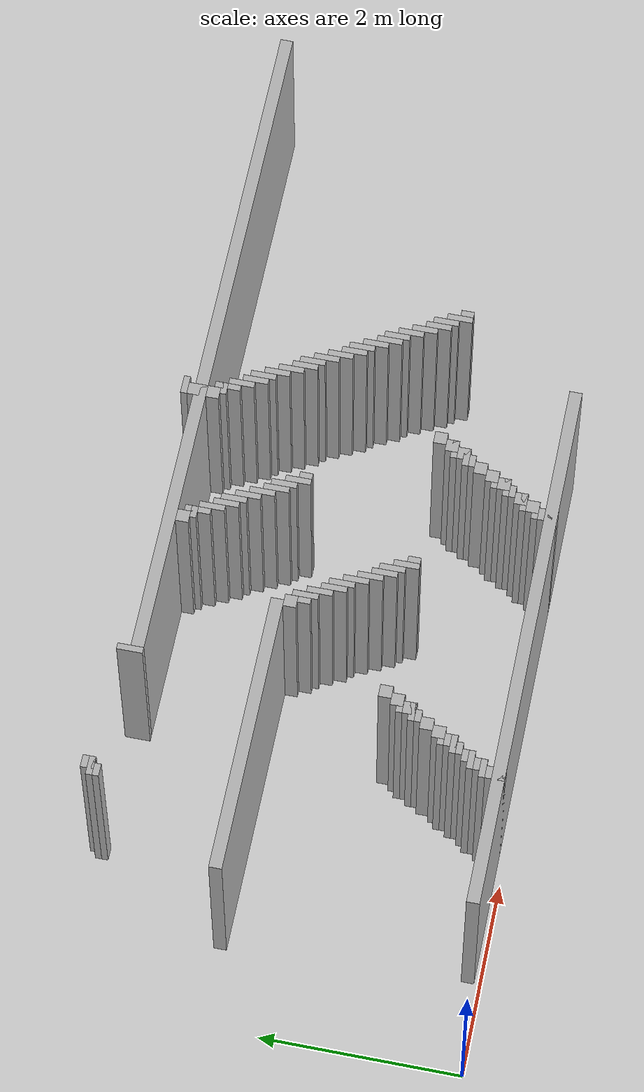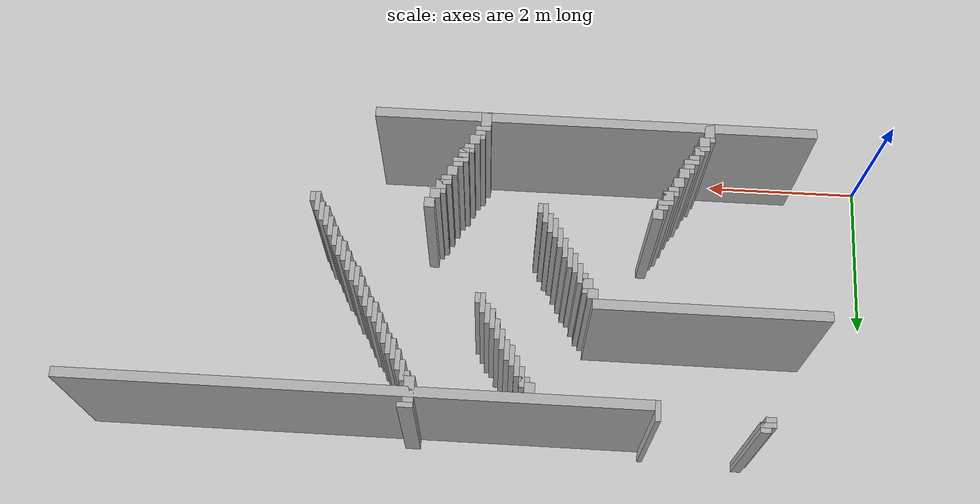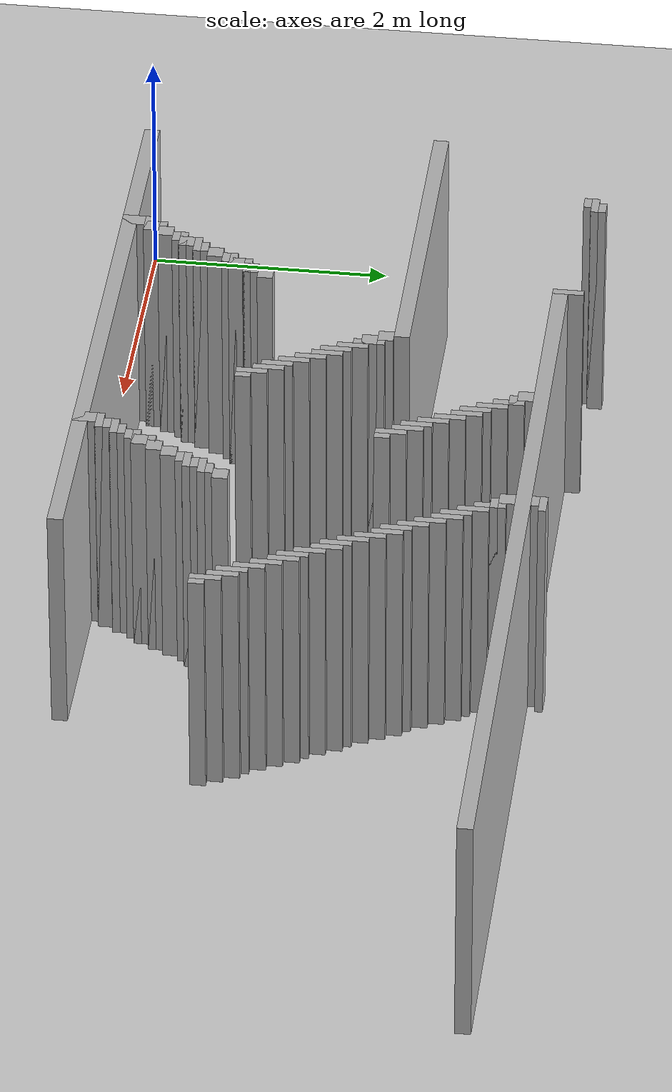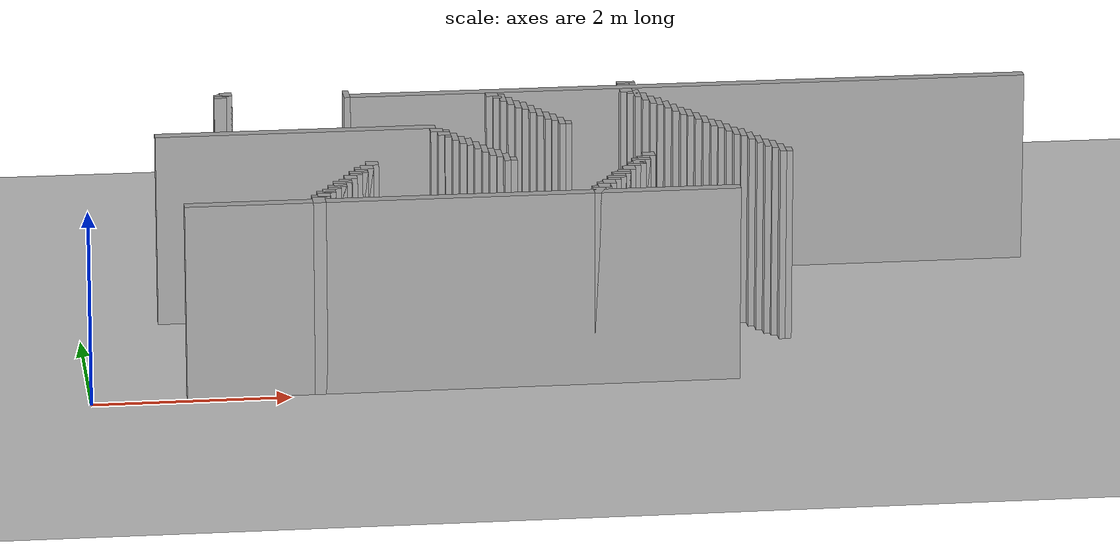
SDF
<sdf version="1.6">
 <world name="slam_world">
  <model name="ground_plane">
   <static>true</static>
   <link name="link">
    <collision name="collision">
     <geometry><plane><normal>0 0 1</normal><size>100 100</size></plane></geometry>
    </collision>
    <visual name="visual">
     <geometry><plane><normal>0 0 1</normal><size>100 100</size></plane></geometry>
     <material>
      <ambient>0.8 0.8 0.8 1</ambient>
      <diffuse>0.8 0.8 0.8 1</diffuse>
      <specular>0.8 0.8 0.8 1</specular>
     </material>
    </visual>
   </link>
  </model>
  <model name="wall_1937">
   <static>true</static>
   <pose>1.6595744680851063 3.957446808510638 1.0 0 0 0</pose>
   <link name="link">
    <collision name="collision">
     <geometry><box><size>0.1276595744680851 0.1276595744680851 2.0</size></box></geometry>
    </collision>
    <visual name="visual">
     <geometry><box><size>0.1276595744680851 0.1276595744680851 2.0</size></box></geometry>
     <material><ambient>0.5 0.5 0.5 1</ambient><diffuse>0.7 0.7 0.7 1</diffuse></material>
    </visual>
   </link>
  </model>
  <model name="wall_1942">
   <static>true</static>
   <pose>1.627659574468085 3.9255319148936167 1.0 0 0 0</pose>
   <link name="link">
    <collision name="collision">
     <geometry><box><size>0.19148936170212766 0.06382978723404255 2.0</size></box></geometry>
    </collision>
    <visual name="visual">
     <geometry><box><size>0.19148936170212766 0.06382978723404255 2.0</size></box></geometry>
     <material><ambient>0.5 0.5 0.5 1</ambient><diffuse>0.7 0.7 0.7 1</diffuse></material>
    </visual>
   </link>
  </model>
  <model name="wall_1943">
   <static>true</static>
   <pose>2.9042553191489358 3.829787234042553 1.0 0 0 0</pose>
   <link name="link">
    <collision name="collision">
     <geometry><box><size>0.06382978723404255 0.2553191489361702 2.0</size></box></geometry>
    </collision>
    <visual name="visual">
     <geometry><box><size>0.06382978723404255 0.2553191489361702 2.0</size></box></geometry>
     <material><ambient>0.5 0.5 0.5 1</ambient><diffuse>0.7 0.7 0.7 1</diffuse></material>
    </visual>
   </link>
  </model>
  <model name="wall_1944">
   <static>true</static>
   <pose>5.840425531914893 3.9255319148936167 1.0 0 0 0</pose>
   <link name="link">
    <collision name="collision">
     <geometry><box><size>0.19148936170212766 0.06382978723404255 2.0</size></box></geometry>
    </collision>
    <visual name="visual">
     <geometry><box><size>0.19148936170212766 0.06382978723404255 2.0</size></box></geometry>
     <material><ambient>0.5 0.5 0.5 1</ambient><diffuse>0.7 0.7 0.7 1</diffuse></material>
    </visual>
   </link>
  </model>
  <model name="wall_1948">
   <static>true</static>
   <pose>1.5957446808510638 3.861702127659574 1.0 0 0 0</pose>
   <link name="link">
    <collision name="collision">
     <geometry><box><size>0.1276595744680851 0.06382978723404255 2.0</size></box></geometry>
    </collision>
    <visual name="visual">
     <geometry><box><size>0.1276595744680851 0.06382978723404255 2.0</size></box></geometry>
     <material><ambient>0.5 0.5 0.5 1</ambient><diffuse>0.7 0.7 0.7 1</diffuse></material>
    </visual>
   </link>
  </model>
  <model name="wall_1949">
   <static>true</static>
   <pose>5.8085106382978715 3.734042553191489 1.0 0 0 0</pose>
   <link name="link">
    <collision name="collision">
     <geometry><box><size>0.1276595744680851 0.3191489361702127 2.0</size></box></geometry>
    </collision>
    <visual name="visual">
     <geometry><box><size>0.1276595744680851 0.3191489361702127 2.0</size></box></geometry>
     <material><ambient>0.5 0.5 0.5 1</ambient><diffuse>0.7 0.7 0.7 1</diffuse></material>
    </visual>
   </link>
  </model>
  <model name="wall_1954">
   <static>true</static>
   <pose>6.478723404255319 3.7659574468085104 1.0 0 0 0</pose>
   <link name="link">
    <collision name="collision">
     <geometry><box><size>7.085106382978723 0.1276595744680851 2.0</size></box></geometry>
    </collision>
    <visual name="visual">
     <geometry><box><size>7.085106382978723 0.1276595744680851 2.0</size></box></geometry>
     <material><ambient>0.5 0.5 0.5 1</ambient><diffuse>0.7 0.7 0.7 1</diffuse></material>
    </visual>
   </link>
  </model>
  <model name="wall_1963">
   <static>true</static>
   <pose>4.404255319148936 3.6382978723404253 1.0 0 0 0</pose>
   <link name="link">
    <collision name="collision">
     <geometry><box><size>0.1276595744680851 0.1276595744680851 2.0</size></box></geometry>
    </collision>
    <visual name="visual">
     <geometry><box><size>0.1276595744680851 0.1276595744680851 2.0</size></box></geometry>
     <material><ambient>0.5 0.5 0.5 1</ambient><diffuse>0.7 0.7 0.7 1</diffuse></material>
    </visual>
   </link>
  </model>
  <model name="wall_1969">
   <static>true</static>
   <pose>4.5 3.5106382978723403 1.0 0 0 0</pose>
   <link name="link">
    <collision name="collision">
     <geometry><box><size>0.06382978723404255 0.2553191489361702 2.0</size></box></geometry>
    </collision>
    <visual name="visual">
     <geometry><box><size>0.06382978723404255 0.2553191489361702 2.0</size></box></geometry>
     <material><ambient>0.5 0.5 0.5 1</ambient><diffuse>0.7 0.7 0.7 1</diffuse></material>
    </visual>
   </link>
  </model>
  <model name="wall_1970">
   <static>true</static>
   <pose>5.904255319148936 3.5106382978723403 1.0 0 0 0</pose>
   <link name="link">
    <collision name="collision">
     <geometry><box><size>0.06382978723404255 0.2553191489361702 2.0</size></box></geometry>
    </collision>
    <visual name="visual">
     <geometry><box><size>0.06382978723404255 0.2553191489361702 2.0</size></box></geometry>
     <material><ambient>0.5 0.5 0.5 1</ambient><diffuse>0.7 0.7 0.7 1</diffuse></material>
    </visual>
   </link>
  </model>
  <model name="wall_1975">
   <static>true</static>
   <pose>4.468085106382978 3.5425531914893615 1.0 0 0 0</pose>
   <link name="link">
    <collision name="collision">
     <geometry><box><size>0.1276595744680851 0.06382978723404255 2.0</size></box></geometry>
    </collision>
    <visual name="visual">
     <geometry><box><size>0.1276595744680851 0.06382978723404255 2.0</size></box></geometry>
     <material><ambient>0.5 0.5 0.5 1</ambient><diffuse>0.7 0.7 0.7 1</diffuse></material>
    </visual>
   </link>
  </model>
  <model name="wall_1976">
   <static>true</static>
   <pose>5.872340425531914 3.5425531914893615 1.0 0 0 0</pose>
   <link name="link">
    <collision name="collision">
     <geometry><box><size>0.1276595744680851 0.06382978723404255 2.0</size></box></geometry>
    </collision>
    <visual name="visual">
     <geometry><box><size>0.1276595744680851 0.06382978723404255 2.0</size></box></geometry>
     <material><ambient>0.5 0.5 0.5 1</ambient><diffuse>0.7 0.7 0.7 1</diffuse></material>
    </visual>
   </link>
  </model>
  <model name="wall_1980">
   <static>true</static>
   <pose>4.5638297872340425 3.382978723404255 1.0 0 0 0</pose>
   <link name="link">
    <collision name="collision">
     <geometry><box><size>0.06382978723404255 0.2553191489361702 2.0</size></box></geometry>
    </collision>
    <visual name="visual">
     <geometry><box><size>0.06382978723404255 0.2553191489361702 2.0</size></box></geometry>
     <material><ambient>0.5 0.5 0.5 1</ambient><diffuse>0.7 0.7 0.7 1</diffuse></material>
    </visual>
   </link>
  </model>
  <model name="wall_1981">
   <static>true</static>
   <pose>5.968085106382978 3.382978723404255 1.0 0 0 0</pose>
   <link name="link">
    <collision name="collision">
     <geometry><box><size>0.06382978723404255 0.2553191489361702 2.0</size></box></geometry>
    </collision>
    <visual name="visual">
     <geometry><box><size>0.06382978723404255 0.2553191489361702 2.0</size></box></geometry>
     <material><ambient>0.5 0.5 0.5 1</ambient><diffuse>0.7 0.7 0.7 1</diffuse></material>
    </visual>
   </link>
  </model>
  <model name="wall_1987">
   <static>true</static>
   <pose>4.627659574468085 3.25531914893617 1.0 0 0 0</pose>
   <link name="link">
    <collision name="collision">
     <geometry><box><size>0.06382978723404255 0.2553191489361702 2.0</size></box></geometry>
    </collision>
    <visual name="visual">
     <geometry><box><size>0.06382978723404255 0.2553191489361702 2.0</size></box></geometry>
     <material><ambient>0.5 0.5 0.5 1</ambient><diffuse>0.7 0.7 0.7 1</diffuse></material>
    </visual>
   </link>
  </model>
  <model name="wall_1988">
   <static>true</static>
   <pose>6.031914893617021 3.25531914893617 1.0 0 0 0</pose>
   <link name="link">
    <collision name="collision">
     <geometry><box><size>0.06382978723404255 0.2553191489361702 2.0</size></box></geometry>
    </collision>
    <visual name="visual">
     <geometry><box><size>0.06382978723404255 0.2553191489361702 2.0</size></box></geometry>
     <material><ambient>0.5 0.5 0.5 1</ambient><diffuse>0.7 0.7 0.7 1</diffuse></material>
    </visual>
   </link>
  </model>
  <model name="wall_1994">
   <static>true</static>
   <pose>4.691489361702128 3.1914893617021276 1.0 0 0 0</pose>
   <link name="link">
    <collision name="collision">
     <geometry><box><size>0.06382978723404255 0.2553191489361702 2.0</size></box></geometry>
    </collision>
    <visual name="visual">
     <geometry><box><size>0.06382978723404255 0.2553191489361702 2.0</size></box></geometry>
     <material><ambient>0.5 0.5 0.5 1</ambient><diffuse>0.7 0.7 0.7 1</diffuse></material>
    </visual>
   </link>
  </model>
  <model name="wall_1995">
   <static>true</static>
   <pose>6.095744680851063 3.1914893617021276 1.0 0 0 0</pose>
   <link name="link">
    <collision name="collision">
     <geometry><box><size>0.06382978723404255 0.2553191489361702 2.0</size></box></geometry>
    </collision>
    <visual name="visual">
     <geometry><box><size>0.06382978723404255 0.2553191489361702 2.0</size></box></geometry>
     <material><ambient>0.5 0.5 0.5 1</ambient><diffuse>0.7 0.7 0.7 1</diffuse></material>
    </visual>
   </link>
  </model>
  <model name="wall_2002">
   <static>true</static>
   <pose>4.75531914893617 3.0638297872340425 1.0 0 0 0</pose>
   <link name="link">
    <collision name="collision">
     <geometry><box><size>0.06382978723404255 0.2553191489361702 2.0</size></box></geometry>
    </collision>
    <visual name="visual">
     <geometry><box><size>0.06382978723404255 0.2553191489361702 2.0</size></box></geometry>
     <material><ambient>0.5 0.5 0.5 1</ambient><diffuse>0.7 0.7 0.7 1</diffuse></material>
    </visual>
   </link>
  </model>
  <model name="wall_2003">
   <static>true</static>
   <pose>6.159574468085106 3.0638297872340425 1.0 0 0 0</pose>
   <link name="link">
    <collision name="collision">
     <geometry><box><size>0.06382978723404255 0.2553191489361702 2.0</size></box></geometry>
    </collision>
    <visual name="visual">
     <geometry><box><size>0.06382978723404255 0.2553191489361702 2.0</size></box></geometry>
     <material><ambient>0.5 0.5 0.5 1</ambient><diffuse>0.7 0.7 0.7 1</diffuse></material>
    </visual>
   </link>
  </model>
  <model name="wall_2010">
   <static>true</static>
   <pose>4.819148936170213 2.936170212765957 1.0 0 0 0</pose>
   <link name="link">
    <collision name="collision">
     <geometry><box><size>0.06382978723404255 0.2553191489361702 2.0</size></box></geometry>
    </collision>
    <visual name="visual">
     <geometry><box><size>0.06382978723404255 0.2553191489361702 2.0</size></box></geometry>
     <material><ambient>0.5 0.5 0.5 1</ambient><diffuse>0.7 0.7 0.7 1</diffuse></material>
    </visual>
   </link>
  </model>
  <model name="wall_2011">
   <static>true</static>
   <pose>6.223404255319148 2.936170212765957 1.0 0 0 0</pose>
   <link name="link">
    <collision name="collision">
     <geometry><box><size>0.06382978723404255 0.2553191489361702 2.0</size></box></geometry>
    </collision>
    <visual name="visual">
     <geometry><box><size>0.06382978723404255 0.2553191489361702 2.0</size></box></geometry>
     <material><ambient>0.5 0.5 0.5 1</ambient><diffuse>0.7 0.7 0.7 1</diffuse></material>
    </visual>
   </link>
  </model>
  <model name="wall_2017">
   <static>true</static>
   <pose>4.882978723404255 2.808510638297872 1.0 0 0 0</pose>
   <link name="link">
    <collision name="collision">
     <geometry><box><size>0.06382978723404255 0.2553191489361702 2.0</size></box></geometry>
    </collision>
    <visual name="visual">
     <geometry><box><size>0.06382978723404255 0.2553191489361702 2.0</size></box></geometry>
     <material><ambient>0.5 0.5 0.5 1</ambient><diffuse>0.7 0.7 0.7 1</diffuse></material>
    </visual>
   </link>
  </model>
  <model name="wall_2018">
   <static>true</static>
   <pose>6.287234042553191 2.808510638297872 1.0 0 0 0</pose>
   <link name="link">
    <collision name="collision">
     <geometry><box><size>0.06382978723404255 0.2553191489361702 2.0</size></box></geometry>
    </collision>
    <visual name="visual">
     <geometry><box><size>0.06382978723404255 0.2553191489361702 2.0</size></box></geometry>
     <material><ambient>0.5 0.5 0.5 1</ambient><diffuse>0.7 0.7 0.7 1</diffuse></material>
    </visual>
   </link>
  </model>
  <model name="wall_2024">
   <static>true</static>
   <pose>4.946808510638298 2.7446808510638294 1.0 0 0 0</pose>
   <link name="link">
    <collision name="collision">
     <geometry><box><size>0.06382978723404255 0.2553191489361702 2.0</size></box></geometry>
    </collision>
    <visual name="visual">
     <geometry><box><size>0.06382978723404255 0.2553191489361702 2.0</size></box></geometry>
     <material><ambient>0.5 0.5 0.5 1</ambient><diffuse>0.7 0.7 0.7 1</diffuse></material>
    </visual>
   </link>
  </model>
  <model name="wall_2025">
   <static>true</static>
   <pose>6.3510638297872335 2.7446808510638294 1.0 0 0 0</pose>
   <link name="link">
    <collision name="collision">
     <geometry><box><size>0.06382978723404255 0.2553191489361702 2.0</size></box></geometry>
    </collision>
    <visual name="visual">
     <geometry><box><size>0.06382978723404255 0.2553191489361702 2.0</size></box></geometry>
     <material><ambient>0.5 0.5 0.5 1</ambient><diffuse>0.7 0.7 0.7 1</diffuse></material>
    </visual>
   </link>
  </model>
  <model name="wall_2032">
   <static>true</static>
   <pose>5.01063829787234 2.6170212765957444 1.0 0 0 0</pose>
   <link name="link">
    <collision name="collision">
     <geometry><box><size>0.06382978723404255 0.2553191489361702 2.0</size></box></geometry>
    </collision>
    <visual name="visual">
     <geometry><box><size>0.06382978723404255 0.2553191489361702 2.0</size></box></geometry>
     <material><ambient>0.5 0.5 0.5 1</ambient><diffuse>0.7 0.7 0.7 1</diffuse></material>
    </visual>
   </link>
  </model>
  <model name="wall_2033">
   <static>true</static>
   <pose>6.414893617021276 2.6170212765957444 1.0 0 0 0</pose>
   <link name="link">
    <collision name="collision">
     <geometry><box><size>0.06382978723404255 0.2553191489361702 2.0</size></box></geometry>
    </collision>
    <visual name="visual">
     <geometry><box><size>0.06382978723404255 0.2553191489361702 2.0</size></box></geometry>
     <material><ambient>0.5 0.5 0.5 1</ambient><diffuse>0.7 0.7 0.7 1</diffuse></material>
    </visual>
   </link>
  </model>
  <model name="wall_2039">
   <static>true</static>
   <pose>2.2659574468085104 2.553191489361702 1.0 0 0 0</pose>
   <link name="link">
    <collision name="collision">
     <geometry><box><size>2.8723404255319145 0.1276595744680851 2.0</size></box></geometry>
    </collision>
    <visual name="visual">
     <geometry><box><size>2.8723404255319145 0.1276595744680851 2.0</size></box></geometry>
     <material><ambient>0.5 0.5 0.5 1</ambient><diffuse>0.7 0.7 0.7 1</diffuse></material>
    </visual>
   </link>
  </model>
  <model name="wall_2040">
   <static>true</static>
   <pose>5.074468085106383 2.553191489361702 1.0 0 0 0</pose>
   <link name="link">
    <collision name="collision">
     <geometry><box><size>0.06382978723404255 0.1276595744680851 2.0</size></box></geometry>
    </collision>
    <visual name="visual">
     <geometry><box><size>0.06382978723404255 0.1276595744680851 2.0</size></box></geometry>
     <material><ambient>0.5 0.5 0.5 1</ambient><diffuse>0.7 0.7 0.7 1</diffuse></material>
    </visual>
   </link>
  </model>
  <model name="wall_2041">
   <static>true</static>
   <pose>6.478723404255319 2.4893617021276593 1.0 0 0 0</pose>
   <link name="link">
    <collision name="collision">
     <geometry><box><size>0.06382978723404255 0.2553191489361702 2.0</size></box></geometry>
    </collision>
    <visual name="visual">
     <geometry><box><size>0.06382978723404255 0.2553191489361702 2.0</size></box></geometry>
     <material><ambient>0.5 0.5 0.5 1</ambient><diffuse>0.7 0.7 0.7 1</diffuse></material>
    </visual>
   </link>
  </model>
  <model name="wall_2047">
   <static>true</static>
   <pose>3.702127659574468 2.4255319148936167 1.0 0 0 0</pose>
   <link name="link">
    <collision name="collision">
     <geometry><box><size>0.1276595744680851 0.1276595744680851 2.0</size></box></geometry>
    </collision>
    <visual name="visual">
     <geometry><box><size>0.1276595744680851 0.1276595744680851 2.0</size></box></geometry>
     <material><ambient>0.5 0.5 0.5 1</ambient><diffuse>0.7 0.7 0.7 1</diffuse></material>
    </visual>
   </link>
  </model>
  <model name="wall_2048">
   <static>true</static>
   <pose>6.542553191489361 2.361702127659574 1.0 0 0 0</pose>
   <link name="link">
    <collision name="collision">
     <geometry><box><size>0.06382978723404255 0.2553191489361702 2.0</size></box></geometry>
    </collision>
    <visual name="visual">
     <geometry><box><size>0.06382978723404255 0.2553191489361702 2.0</size></box></geometry>
     <material><ambient>0.5 0.5 0.5 1</ambient><diffuse>0.7 0.7 0.7 1</diffuse></material>
    </visual>
   </link>
  </model>
  <model name="wall_2053">
   <static>true</static>
   <pose>3.7978723404255317 2.2978723404255317 1.0 0 0 0</pose>
   <link name="link">
    <collision name="collision">
     <geometry><box><size>0.06382978723404255 0.2553191489361702 2.0</size></box></geometry>
    </collision>
    <visual name="visual">
     <geometry><box><size>0.06382978723404255 0.2553191489361702 2.0</size></box></geometry>
     <material><ambient>0.5 0.5 0.5 1</ambient><diffuse>0.7 0.7 0.7 1</diffuse></material>
    </visual>
   </link>
  </model>
  <model name="wall_2054">
   <static>true</static>
   <pose>6.606382978723404 2.2978723404255317 1.0 0 0 0</pose>
   <link name="link">
    <collision name="collision">
     <geometry><box><size>0.06382978723404255 0.2553191489361702 2.0</size></box></geometry>
    </collision>
    <visual name="visual">
     <geometry><box><size>0.06382978723404255 0.2553191489361702 2.0</size></box></geometry>
     <material><ambient>0.5 0.5 0.5 1</ambient><diffuse>0.7 0.7 0.7 1</diffuse></material>
    </visual>
   </link>
  </model>
  <model name="wall_2059">
   <static>true</static>
   <pose>3.7659574468085104 2.2978723404255317 1.0 0 0 0</pose>
   <link name="link">
    <collision name="collision">
     <geometry><box><size>0.1276595744680851 0.1276595744680851 2.0</size></box></geometry>
    </collision>
    <visual name="visual">
     <geometry><box><size>0.1276595744680851 0.1276595744680851 2.0</size></box></geometry>
     <material><ambient>0.5 0.5 0.5 1</ambient><diffuse>0.7 0.7 0.7 1</diffuse></material>
    </visual>
   </link>
  </model>
  <model name="wall_2064">
   <static>true</static>
   <pose>3.861702127659574 2.1702127659574466 1.0 0 0 0</pose>
   <link name="link">
    <collision name="collision">
     <geometry><box><size>0.06382978723404255 0.2553191489361702 2.0</size></box></geometry>
    </collision>
    <visual name="visual">
     <geometry><box><size>0.06382978723404255 0.2553191489361702 2.0</size></box></geometry>
     <material><ambient>0.5 0.5 0.5 1</ambient><diffuse>0.7 0.7 0.7 1</diffuse></material>
    </visual>
   </link>
  </model>
  <model name="wall_2065">
   <static>true</static>
   <pose>6.670212765957446 2.1702127659574466 1.0 0 0 0</pose>
   <link name="link">
    <collision name="collision">
     <geometry><box><size>0.06382978723404255 0.2553191489361702 2.0</size></box></geometry>
    </collision>
    <visual name="visual">
     <geometry><box><size>0.06382978723404255 0.2553191489361702 2.0</size></box></geometry>
     <material><ambient>0.5 0.5 0.5 1</ambient><diffuse>0.7 0.7 0.7 1</diffuse></material>
    </visual>
   </link>
  </model>
  <model name="wall_2072">
   <static>true</static>
   <pose>3.9255319148936167 2.0425531914893615 1.0 0 0 0</pose>
   <link name="link">
    <collision name="collision">
     <geometry><box><size>0.06382978723404255 0.2553191489361702 2.0</size></box></geometry>
    </collision>
    <visual name="visual">
     <geometry><box><size>0.06382978723404255 0.2553191489361702 2.0</size></box></geometry>
     <material><ambient>0.5 0.5 0.5 1</ambient><diffuse>0.7 0.7 0.7 1</diffuse></material>
    </visual>
   </link>
  </model>
  <model name="wall_2073">
   <static>true</static>
   <pose>6.734042553191489 2.0425531914893615 1.0 0 0 0</pose>
   <link name="link">
    <collision name="collision">
     <geometry><box><size>0.06382978723404255 0.2553191489361702 2.0</size></box></geometry>
    </collision>
    <visual name="visual">
     <geometry><box><size>0.06382978723404255 0.2553191489361702 2.0</size></box></geometry>
     <material><ambient>0.5 0.5 0.5 1</ambient><diffuse>0.7 0.7 0.7 1</diffuse></material>
    </visual>
   </link>
  </model>
  <model name="wall_2078">
   <static>true</static>
   <pose>3.9893617021276593 1.978723404255319 1.0 0 0 0</pose>
   <link name="link">
    <collision name="collision">
     <geometry><box><size>0.06382978723404255 0.2553191489361702 2.0</size></box></geometry>
    </collision>
    <visual name="visual">
     <geometry><box><size>0.06382978723404255 0.2553191489361702 2.0</size></box></geometry>
     <material><ambient>0.5 0.5 0.5 1</ambient><diffuse>0.7 0.7 0.7 1</diffuse></material>
    </visual>
   </link>
  </model>
  <model name="wall_2079">
   <static>true</static>
   <pose>6.797872340425531 1.978723404255319 1.0 0 0 0</pose>
   <link name="link">
    <collision name="collision">
     <geometry><box><size>0.06382978723404255 0.2553191489361702 2.0</size></box></geometry>
    </collision>
    <visual name="visual">
     <geometry><box><size>0.06382978723404255 0.2553191489361702 2.0</size></box></geometry>
     <material><ambient>0.5 0.5 0.5 1</ambient><diffuse>0.7 0.7 0.7 1</diffuse></material>
    </visual>
   </link>
  </model>
  <model name="wall_2086">
   <static>true</static>
   <pose>4.053191489361701 1.851063829787234 1.0 0 0 0</pose>
   <link name="link">
    <collision name="collision">
     <geometry><box><size>0.06382978723404255 0.2553191489361702 2.0</size></box></geometry>
    </collision>
    <visual name="visual">
     <geometry><box><size>0.06382978723404255 0.2553191489361702 2.0</size></box></geometry>
     <material><ambient>0.5 0.5 0.5 1</ambient><diffuse>0.7 0.7 0.7 1</diffuse></material>
    </visual>
   </link>
  </model>
  <model name="wall_2087">
   <static>true</static>
   <pose>6.861702127659574 1.851063829787234 1.0 0 0 0</pose>
   <link name="link">
    <collision name="collision">
     <geometry><box><size>0.06382978723404255 0.2553191489361702 2.0</size></box></geometry>
    </collision>
    <visual name="visual">
     <geometry><box><size>0.06382978723404255 0.2553191489361702 2.0</size></box></geometry>
     <material><ambient>0.5 0.5 0.5 1</ambient><diffuse>0.7 0.7 0.7 1</diffuse></material>
    </visual>
   </link>
  </model>
  <model name="wall_2094">
   <static>true</static>
   <pose>4.117021276595745 1.7234042553191489 1.0 0 0 0</pose>
   <link name="link">
    <collision name="collision">
     <geometry><box><size>0.06382978723404255 0.2553191489361702 2.0</size></box></geometry>
    </collision>
    <visual name="visual">
     <geometry><box><size>0.06382978723404255 0.2553191489361702 2.0</size></box></geometry>
     <material><ambient>0.5 0.5 0.5 1</ambient><diffuse>0.7 0.7 0.7 1</diffuse></material>
    </visual>
   </link>
  </model>
  <model name="wall_2095">
   <static>true</static>
   <pose>6.925531914893616 1.7234042553191489 1.0 0 0 0</pose>
   <link name="link">
    <collision name="collision">
     <geometry><box><size>0.06382978723404255 0.2553191489361702 2.0</size></box></geometry>
    </collision>
    <visual name="visual">
     <geometry><box><size>0.06382978723404255 0.2553191489361702 2.0</size></box></geometry>
     <material><ambient>0.5 0.5 0.5 1</ambient><diffuse>0.7 0.7 0.7 1</diffuse></material>
    </visual>
   </link>
  </model>
  <model name="wall_2100">
   <static>true</static>
   <pose>4.180851063829787 1.5957446808510638 1.0 0 0 0</pose>
   <link name="link">
    <collision name="collision">
     <geometry><box><size>0.06382978723404255 0.2553191489361702 2.0</size></box></geometry>
    </collision>
    <visual name="visual">
     <geometry><box><size>0.06382978723404255 0.2553191489361702 2.0</size></box></geometry>
     <material><ambient>0.5 0.5 0.5 1</ambient><diffuse>0.7 0.7 0.7 1</diffuse></material>
    </visual>
   </link>
  </model>
  <model name="wall_2101">
   <static>true</static>
   <pose>6.989361702127659 1.5957446808510638 1.0 0 0 0</pose>
   <link name="link">
    <collision name="collision">
     <geometry><box><size>0.06382978723404255 0.2553191489361702 2.0</size></box></geometry>
    </collision>
    <visual name="visual">
     <geometry><box><size>0.06382978723404255 0.2553191489361702 2.0</size></box></geometry>
     <material><ambient>0.5 0.5 0.5 1</ambient><diffuse>0.7 0.7 0.7 1</diffuse></material>
    </visual>
   </link>
  </model>
  <model name="wall_2106">
   <static>true</static>
   <pose>4.24468085106383 1.5319148936170213 1.0 0 0 0</pose>
   <link name="link">
    <collision name="collision">
     <geometry><box><size>0.06382978723404255 0.2553191489361702 2.0</size></box></geometry>
    </collision>
    <visual name="visual">
     <geometry><box><size>0.06382978723404255 0.2553191489361702 2.0</size></box></geometry>
     <material><ambient>0.5 0.5 0.5 1</ambient><diffuse>0.7 0.7 0.7 1</diffuse></material>
    </visual>
   </link>
  </model>
  <model name="wall_2107">
   <static>true</static>
   <pose>7.053191489361701 1.5319148936170213 1.0 0 0 0</pose>
   <link name="link">
    <collision name="collision">
     <geometry><box><size>0.06382978723404255 0.2553191489361702 2.0</size></box></geometry>
    </collision>
    <visual name="visual">
     <geometry><box><size>0.06382978723404255 0.2553191489361702 2.0</size></box></geometry>
     <material><ambient>0.5 0.5 0.5 1</ambient><diffuse>0.7 0.7 0.7 1</diffuse></material>
    </visual>
   </link>
  </model>
  <model name="wall_2114">
   <static>true</static>
   <pose>4.308510638297872 1.404255319148936 1.0 0 0 0</pose>
   <link name="link">
    <collision name="collision">
     <geometry><box><size>0.06382978723404255 0.2553191489361702 2.0</size></box></geometry>
    </collision>
    <visual name="visual">
     <geometry><box><size>0.06382978723404255 0.2553191489361702 2.0</size></box></geometry>
     <material><ambient>0.5 0.5 0.5 1</ambient><diffuse>0.7 0.7 0.7 1</diffuse></material>
    </visual>
   </link>
  </model>
  <model name="wall_2115">
   <static>true</static>
   <pose>7.117021276595744 1.404255319148936 1.0 0 0 0</pose>
   <link name="link">
    <collision name="collision">
     <geometry><box><size>0.06382978723404255 0.2553191489361702 2.0</size></box></geometry>
    </collision>
    <visual name="visual">
     <geometry><box><size>0.06382978723404255 0.2553191489361702 2.0</size></box></geometry>
     <material><ambient>0.5 0.5 0.5 1</ambient><diffuse>0.7 0.7 0.7 1</diffuse></material>
    </visual>
   </link>
  </model>
  <model name="wall_2123">
   <static>true</static>
   <pose>2.936170212765957 1.3404255319148934 1.0 0 0 0</pose>
   <link name="link">
    <collision name="collision">
     <geometry><box><size>0.1276595744680851 0.1276595744680851 2.0</size></box></geometry>
    </collision>
    <visual name="visual">
     <geometry><box><size>0.1276595744680851 0.1276595744680851 2.0</size></box></geometry>
     <material><ambient>0.5 0.5 0.5 1</ambient><diffuse>0.7 0.7 0.7 1</diffuse></material>
    </visual>
   </link>
  </model>
  <model name="wall_2124">
   <static>true</static>
   <pose>4.372340425531915 1.3404255319148934 1.0 0 0 0</pose>
   <link name="link">
    <collision name="collision">
     <geometry><box><size>0.06382978723404255 0.1276595744680851 2.0</size></box></geometry>
    </collision>
    <visual name="visual">
     <geometry><box><size>0.06382978723404255 0.1276595744680851 2.0</size></box></geometry>
     <material><ambient>0.5 0.5 0.5 1</ambient><diffuse>0.7 0.7 0.7 1</diffuse></material>
    </visual>
   </link>
  </model>
  <model name="wall_2125">
   <static>true</static>
   <pose>5.744680851063829 1.3404255319148934 1.0 0 0 0</pose>
   <link name="link">
    <collision name="collision">
     <geometry><box><size>0.1276595744680851 0.1276595744680851 2.0</size></box></geometry>
    </collision>
    <visual name="visual">
     <geometry><box><size>0.1276595744680851 0.1276595744680851 2.0</size></box></geometry>
     <material><ambient>0.5 0.5 0.5 1</ambient><diffuse>0.7 0.7 0.7 1</diffuse></material>
    </visual>
   </link>
  </model>
  <model name="wall_2126">
   <static>true</static>
   <pose>7.180851063829786 1.3404255319148934 1.0 0 0 0</pose>
   <link name="link">
    <collision name="collision">
     <geometry><box><size>0.06382978723404255 0.1276595744680851 2.0</size></box></geometry>
    </collision>
    <visual name="visual">
     <geometry><box><size>0.06382978723404255 0.1276595744680851 2.0</size></box></geometry>
     <material><ambient>0.5 0.5 0.5 1</ambient><diffuse>0.7 0.7 0.7 1</diffuse></material>
    </visual>
   </link>
  </model>
  <model name="wall_2134">
   <static>true</static>
   <pose>2.8723404255319145 1.2127659574468084 1.0 0 0 0</pose>
   <link name="link">
    <collision name="collision">
     <geometry><box><size>0.1276595744680851 0.1276595744680851 2.0</size></box></geometry>
    </collision>
    <visual name="visual">
     <geometry><box><size>0.1276595744680851 0.1276595744680851 2.0</size></box></geometry>
     <material><ambient>0.5 0.5 0.5 1</ambient><diffuse>0.7 0.7 0.7 1</diffuse></material>
    </visual>
   </link>
  </model>
  <model name="wall_2135">
   <static>true</static>
   <pose>5.680851063829786 1.2127659574468084 1.0 0 0 0</pose>
   <link name="link">
    <collision name="collision">
     <geometry><box><size>0.1276595744680851 0.1276595744680851 2.0</size></box></geometry>
    </collision>
    <visual name="visual">
     <geometry><box><size>0.1276595744680851 0.1276595744680851 2.0</size></box></geometry>
     <material><ambient>0.5 0.5 0.5 1</ambient><diffuse>0.7 0.7 0.7 1</diffuse></material>
    </visual>
   </link>
  </model>
  <model name="wall_2142">
   <static>true</static>
   <pose>2.840425531914893 1.180851063829787 1.0 0 0 0</pose>
   <link name="link">
    <collision name="collision">
     <geometry><box><size>0.19148936170212766 0.06382978723404255 2.0</size></box></geometry>
    </collision>
    <visual name="visual">
     <geometry><box><size>0.19148936170212766 0.06382978723404255 2.0</size></box></geometry>
     <material><ambient>0.5 0.5 0.5 1</ambient><diffuse>0.7 0.7 0.7 1</diffuse></material>
    </visual>
   </link>
  </model>
  <model name="wall_2143">
   <static>true</static>
   <pose>5.648936170212766 1.180851063829787 1.0 0 0 0</pose>
   <link name="link">
    <collision name="collision">
     <geometry><box><size>0.19148936170212766 0.06382978723404255 2.0</size></box></geometry>
    </collision>
    <visual name="visual">
     <geometry><box><size>0.19148936170212766 0.06382978723404255 2.0</size></box></geometry>
     <material><ambient>0.5 0.5 0.5 1</ambient><diffuse>0.7 0.7 0.7 1</diffuse></material>
    </visual>
   </link>
  </model>
  <model name="wall_2150">
   <static>true</static>
   <pose>2.808510638297872 1.0851063829787233 1.0 0 0 0</pose>
   <link name="link">
    <collision name="collision">
     <geometry><box><size>0.1276595744680851 0.1276595744680851 2.0</size></box></geometry>
    </collision>
    <visual name="visual">
     <geometry><box><size>0.1276595744680851 0.1276595744680851 2.0</size></box></geometry>
     <material><ambient>0.5 0.5 0.5 1</ambient><diffuse>0.7 0.7 0.7 1</diffuse></material>
    </visual>
   </link>
  </model>
  <model name="wall_2151">
   <static>true</static>
   <pose>5.617021276595744 1.0851063829787233 1.0 0 0 0</pose>
   <link name="link">
    <collision name="collision">
     <geometry><box><size>0.1276595744680851 0.1276595744680851 2.0</size></box></geometry>
    </collision>
    <visual name="visual">
     <geometry><box><size>0.1276595744680851 0.1276595744680851 2.0</size></box></geometry>
     <material><ambient>0.5 0.5 0.5 1</ambient><diffuse>0.7 0.7 0.7 1</diffuse></material>
    </visual>
   </link>
  </model>
  <model name="wall_2157">
   <static>true</static>
   <pose>2.7765957446808507 1.053191489361702 1.0 0 0 0</pose>
   <link name="link">
    <collision name="collision">
     <geometry><box><size>0.19148936170212766 0.06382978723404255 2.0</size></box></geometry>
    </collision>
    <visual name="visual">
     <geometry><box><size>0.19148936170212766 0.06382978723404255 2.0</size></box></geometry>
     <material><ambient>0.5 0.5 0.5 1</ambient><diffuse>0.7 0.7 0.7 1</diffuse></material>
    </visual>
   </link>
  </model>
  <model name="wall_2158">
   <static>true</static>
   <pose>5.585106382978723 1.053191489361702 1.0 0 0 0</pose>
   <link name="link">
    <collision name="collision">
     <geometry><box><size>0.19148936170212766 0.06382978723404255 2.0</size></box></geometry>
    </collision>
    <visual name="visual">
     <geometry><box><size>0.19148936170212766 0.06382978723404255 2.0</size></box></geometry>
     <material><ambient>0.5 0.5 0.5 1</ambient><diffuse>0.7 0.7 0.7 1</diffuse></material>
    </visual>
   </link>
  </model>
  <model name="wall_2164">
   <static>true</static>
   <pose>2.7446808510638294 0.9893617021276595 1.0 0 0 0</pose>
   <link name="link">
    <collision name="collision">
     <geometry><box><size>0.1276595744680851 0.06382978723404255 2.0</size></box></geometry>
    </collision>
    <visual name="visual">
     <geometry><box><size>0.1276595744680851 0.06382978723404255 2.0</size></box></geometry>
     <material><ambient>0.5 0.5 0.5 1</ambient><diffuse>0.7 0.7 0.7 1</diffuse></material>
    </visual>
   </link>
  </model>
  <model name="wall_2165">
   <static>true</static>
   <pose>5.553191489361701 0.9893617021276595 1.0 0 0 0</pose>
   <link name="link">
    <collision name="collision">
     <geometry><box><size>0.1276595744680851 0.06382978723404255 2.0</size></box></geometry>
    </collision>
    <visual name="visual">
     <geometry><box><size>0.1276595744680851 0.06382978723404255 2.0</size></box></geometry>
     <material><ambient>0.5 0.5 0.5 1</ambient><diffuse>0.7 0.7 0.7 1</diffuse></material>
    </visual>
   </link>
  </model>
  <model name="wall_2168">
   <static>true</static>
   <pose>2.680851063829787 0.8936170212765957 1.0 0 0 0</pose>
   <link name="link">
    <collision name="collision">
     <geometry><box><size>0.1276595744680851 0.1276595744680851 2.0</size></box></geometry>
    </collision>
    <visual name="visual">
     <geometry><box><size>0.1276595744680851 0.1276595744680851 2.0</size></box></geometry>
     <material><ambient>0.5 0.5 0.5 1</ambient><diffuse>0.7 0.7 0.7 1</diffuse></material>
    </visual>
   </link>
  </model>
  <model name="wall_2169">
   <static>true</static>
   <pose>5.489361702127659 0.8936170212765957 1.0 0 0 0</pose>
   <link name="link">
    <collision name="collision">
     <geometry><box><size>0.1276595744680851 0.1276595744680851 2.0</size></box></geometry>
    </collision>
    <visual name="visual">
     <geometry><box><size>0.1276595744680851 0.1276595744680851 2.0</size></box></geometry>
     <material><ambient>0.5 0.5 0.5 1</ambient><diffuse>0.7 0.7 0.7 1</diffuse></material>
    </visual>
   </link>
  </model>
  <model name="wall_2176">
   <static>true</static>
   <pose>2.6170212765957444 0.7659574468085106 1.0 0 0 0</pose>
   <link name="link">
    <collision name="collision">
     <geometry><box><size>0.1276595744680851 0.1276595744680851 2.0</size></box></geometry>
    </collision>
    <visual name="visual">
     <geometry><box><size>0.1276595744680851 0.1276595744680851 2.0</size></box></geometry>
     <material><ambient>0.5 0.5 0.5 1</ambient><diffuse>0.7 0.7 0.7 1</diffuse></material>
    </visual>
   </link>
  </model>
  <model name="wall_2177">
   <static>true</static>
   <pose>5.425531914893616 0.7659574468085106 1.0 0 0 0</pose>
   <link name="link">
    <collision name="collision">
     <geometry><box><size>0.1276595744680851 0.1276595744680851 2.0</size></box></geometry>
    </collision>
    <visual name="visual">
     <geometry><box><size>0.1276595744680851 0.1276595744680851 2.0</size></box></geometry>
     <material><ambient>0.5 0.5 0.5 1</ambient><diffuse>0.7 0.7 0.7 1</diffuse></material>
    </visual>
   </link>
  </model>
  <model name="wall_2184">
   <static>true</static>
   <pose>2.585106382978723 0.7340425531914893 1.0 0 0 0</pose>
   <link name="link">
    <collision name="collision">
     <geometry><box><size>0.19148936170212766 0.06382978723404255 2.0</size></box></geometry>
    </collision>
    <visual name="visual">
     <geometry><box><size>0.19148936170212766 0.06382978723404255 2.0</size></box></geometry>
     <material><ambient>0.5 0.5 0.5 1</ambient><diffuse>0.7 0.7 0.7 1</diffuse></material>
    </visual>
   </link>
  </model>
  <model name="wall_2185">
   <static>true</static>
   <pose>5.3936170212765955 0.7340425531914893 1.0 0 0 0</pose>
   <link name="link">
    <collision name="collision">
     <geometry><box><size>0.19148936170212766 0.06382978723404255 2.0</size></box></geometry>
    </collision>
    <visual name="visual">
     <geometry><box><size>0.19148936170212766 0.06382978723404255 2.0</size></box></geometry>
     <material><ambient>0.5 0.5 0.5 1</ambient><diffuse>0.7 0.7 0.7 1</diffuse></material>
    </visual>
   </link>
  </model>
  <model name="wall_2191">
   <static>true</static>
   <pose>2.553191489361702 0.6382978723404255 1.0 0 0 0</pose>
   <link name="link">
    <collision name="collision">
     <geometry><box><size>0.1276595744680851 0.1276595744680851 2.0</size></box></geometry>
    </collision>
    <visual name="visual">
     <geometry><box><size>0.1276595744680851 0.1276595744680851 2.0</size></box></geometry>
     <material><ambient>0.5 0.5 0.5 1</ambient><diffuse>0.7 0.7 0.7 1</diffuse></material>
    </visual>
   </link>
  </model>
  <model name="wall_2192">
   <static>true</static>
   <pose>5.361702127659574 0.6382978723404255 1.0 0 0 0</pose>
   <link name="link">
    <collision name="collision">
     <geometry><box><size>0.1276595744680851 0.1276595744680851 2.0</size></box></geometry>
    </collision>
    <visual name="visual">
     <geometry><box><size>0.1276595744680851 0.1276595744680851 2.0</size></box></geometry>
     <material><ambient>0.5 0.5 0.5 1</ambient><diffuse>0.7 0.7 0.7 1</diffuse></material>
    </visual>
   </link>
  </model>
  <model name="wall_2195">
   <static>true</static>
   <pose>2.5212765957446805 0.6063829787234042 1.0 0 0 0</pose>
   <link name="link">
    <collision name="collision">
     <geometry><box><size>0.19148936170212766 0.06382978723404255 2.0</size></box></geometry>
    </collision>
    <visual name="visual">
     <geometry><box><size>0.19148936170212766 0.06382978723404255 2.0</size></box></geometry>
     <material><ambient>0.5 0.5 0.5 1</ambient><diffuse>0.7 0.7 0.7 1</diffuse></material>
    </visual>
   </link>
  </model>
  <model name="wall_2196">
   <static>true</static>
   <pose>5.329787234042553 0.6063829787234042 1.0 0 0 0</pose>
   <link name="link">
    <collision name="collision">
     <geometry><box><size>0.19148936170212766 0.06382978723404255 2.0</size></box></geometry>
    </collision>
    <visual name="visual">
     <geometry><box><size>0.19148936170212766 0.06382978723404255 2.0</size></box></geometry>
     <material><ambient>0.5 0.5 0.5 1</ambient><diffuse>0.7 0.7 0.7 1</diffuse></material>
    </visual>
   </link>
  </model>
  <model name="wall_2202">
   <static>true</static>
   <pose>2.4893617021276593 0.5425531914893617 1.0 0 0 0</pose>
   <link name="link">
    <collision name="collision">
     <geometry><box><size>0.1276595744680851 0.06382978723404255 2.0</size></box></geometry>
    </collision>
    <visual name="visual">
     <geometry><box><size>0.1276595744680851 0.06382978723404255 2.0</size></box></geometry>
     <material><ambient>0.5 0.5 0.5 1</ambient><diffuse>0.7 0.7 0.7 1</diffuse></material>
    </visual>
   </link>
  </model>
  <model name="wall_2203">
   <static>true</static>
   <pose>5.297872340425531 0.5425531914893617 1.0 0 0 0</pose>
   <link name="link">
    <collision name="collision">
     <geometry><box><size>0.1276595744680851 0.06382978723404255 2.0</size></box></geometry>
    </collision>
    <visual name="visual">
     <geometry><box><size>0.1276595744680851 0.06382978723404255 2.0</size></box></geometry>
     <material><ambient>0.5 0.5 0.5 1</ambient><diffuse>0.7 0.7 0.7 1</diffuse></material>
    </visual>
   </link>
  </model>
  <model name="wall_2206">
   <static>true</static>
   <pose>2.4255319148936167 0.44680851063829785 1.0 0 0 0</pose>
   <link name="link">
    <collision name="collision">
     <geometry><box><size>0.1276595744680851 0.1276595744680851 2.0</size></box></geometry>
    </collision>
    <visual name="visual">
     <geometry><box><size>0.1276595744680851 0.1276595744680851 2.0</size></box></geometry>
     <material><ambient>0.5 0.5 0.5 1</ambient><diffuse>0.7 0.7 0.7 1</diffuse></material>
    </visual>
   </link>
  </model>
  <model name="wall_2207">
   <static>true</static>
   <pose>5.234042553191489 0.44680851063829785 1.0 0 0 0</pose>
   <link name="link">
    <collision name="collision">
     <geometry><box><size>0.1276595744680851 0.1276595744680851 2.0</size></box></geometry>
    </collision>
    <visual name="visual">
     <geometry><box><size>0.1276595744680851 0.1276595744680851 2.0</size></box></geometry>
     <material><ambient>0.5 0.5 0.5 1</ambient><diffuse>0.7 0.7 0.7 1</diffuse></material>
    </visual>
   </link>
  </model>
  <model name="wall_2214">
   <static>true</static>
   <pose>2.3936170212765955 0.4148936170212766 1.0 0 0 0</pose>
   <link name="link">
    <collision name="collision">
     <geometry><box><size>0.19148936170212766 0.06382978723404255 2.0</size></box></geometry>
    </collision>
    <visual name="visual">
     <geometry><box><size>0.19148936170212766 0.06382978723404255 2.0</size></box></geometry>
     <material><ambient>0.5 0.5 0.5 1</ambient><diffuse>0.7 0.7 0.7 1</diffuse></material>
    </visual>
   </link>
  </model>
  <model name="wall_2215">
   <static>true</static>
   <pose>5.202127659574468 0.4148936170212766 1.0 0 0 0</pose>
   <link name="link">
    <collision name="collision">
     <geometry><box><size>0.19148936170212766 0.06382978723404255 2.0</size></box></geometry>
    </collision>
    <visual name="visual">
     <geometry><box><size>0.19148936170212766 0.06382978723404255 2.0</size></box></geometry>
     <material><ambient>0.5 0.5 0.5 1</ambient><diffuse>0.7 0.7 0.7 1</diffuse></material>
    </visual>
   </link>
  </model>
  <model name="wall_2221">
   <static>true</static>
   <pose>2.361702127659574 0.3191489361702127 1.0 0 0 0</pose>
   <link name="link">
    <collision name="collision">
     <geometry><box><size>0.1276595744680851 0.1276595744680851 2.0</size></box></geometry>
    </collision>
    <visual name="visual">
     <geometry><box><size>0.1276595744680851 0.1276595744680851 2.0</size></box></geometry>
     <material><ambient>0.5 0.5 0.5 1</ambient><diffuse>0.7 0.7 0.7 1</diffuse></material>
    </visual>
   </link>
  </model>
  <model name="wall_2222">
   <static>true</static>
   <pose>5.170212765957446 0.3191489361702127 1.0 0 0 0</pose>
   <link name="link">
    <collision name="collision">
     <geometry><box><size>0.1276595744680851 0.1276595744680851 2.0</size></box></geometry>
    </collision>
    <visual name="visual">
     <geometry><box><size>0.1276595744680851 0.1276595744680851 2.0</size></box></geometry>
     <material><ambient>0.5 0.5 0.5 1</ambient><diffuse>0.7 0.7 0.7 1</diffuse></material>
    </visual>
   </link>
  </model>
  <model name="wall_2224">
   <static>true</static>
   <pose>2.329787234042553 0.28723404255319146 1.0 0 0 0</pose>
   <link name="link">
    <collision name="collision">
     <geometry><box><size>0.19148936170212766 0.06382978723404255 2.0</size></box></geometry>
    </collision>
    <visual name="visual">
     <geometry><box><size>0.19148936170212766 0.06382978723404255 2.0</size></box></geometry>
     <material><ambient>0.5 0.5 0.5 1</ambient><diffuse>0.7 0.7 0.7 1</diffuse></material>
    </visual>
   </link>
  </model>
  <model name="wall_2225">
   <static>true</static>
   <pose>5.138297872340425 0.28723404255319146 1.0 0 0 0</pose>
   <link name="link">
    <collision name="collision">
     <geometry><box><size>0.19148936170212766 0.06382978723404255 2.0</size></box></geometry>
    </collision>
    <visual name="visual">
     <geometry><box><size>0.19148936170212766 0.06382978723404255 2.0</size></box></geometry>
     <material><ambient>0.5 0.5 0.5 1</ambient><diffuse>0.7 0.7 0.7 1</diffuse></material>
    </visual>
   </link>
  </model>
  <model name="wall_2231">
   <static>true</static>
   <pose>2.2978723404255317 0.15957446808510636 1.0 0 0 0</pose>
   <link name="link">
    <collision name="collision">
     <geometry><box><size>0.1276595744680851 0.19148936170212766 2.0</size></box></geometry>
    </collision>
    <visual name="visual">
     <geometry><box><size>0.1276595744680851 0.19148936170212766 2.0</size></box></geometry>
     <material><ambient>0.5 0.5 0.5 1</ambient><diffuse>0.7 0.7 0.7 1</diffuse></material>
    </visual>
   </link>
  </model>
  <model name="wall_2232">
   <static>true</static>
   <pose>5.106382978723404 0.15957446808510636 1.0 0 0 0</pose>
   <link name="link">
    <collision name="collision">
     <geometry><box><size>0.1276595744680851 0.19148936170212766 2.0</size></box></geometry>
    </collision>
    <visual name="visual">
     <geometry><box><size>0.1276595744680851 0.19148936170212766 2.0</size></box></geometry>
     <material><ambient>0.5 0.5 0.5 1</ambient><diffuse>0.7 0.7 0.7 1</diffuse></material>
    </visual>
   </link>
  </model>
  <model name="wall_2233">
   <static>true</static>
   <pose>3.734042553191489 0.1276595744680851 1.0 0 0 0</pose>
   <link name="link">
    <collision name="collision">
     <geometry><box><size>5.553191489361701 0.1276595744680851 2.0</size></box></geometry>
    </collision>
    <visual name="visual">
     <geometry><box><size>5.553191489361701 0.1276595744680851 2.0</size></box></geometry>
     <material><ambient>0.5 0.5 0.5 1</ambient><diffuse>0.7 0.7 0.7 1</diffuse></material>
    </visual>
   </link>
  </model>
 </world>
</sdf>
